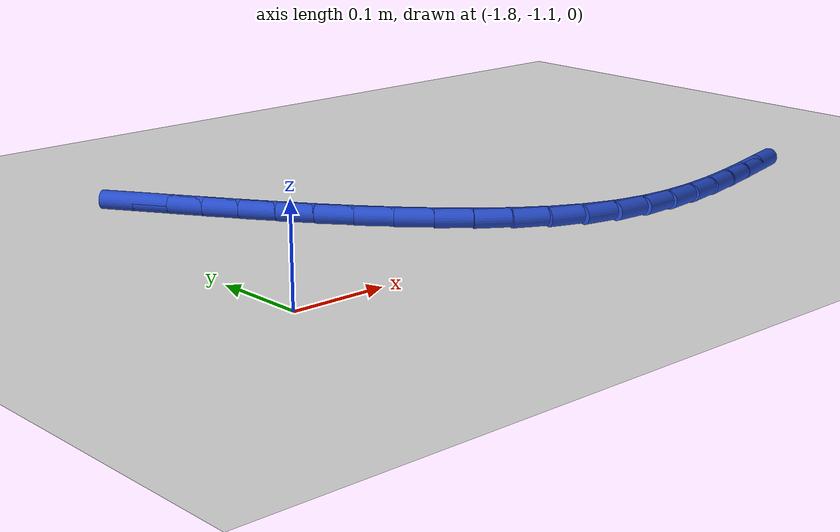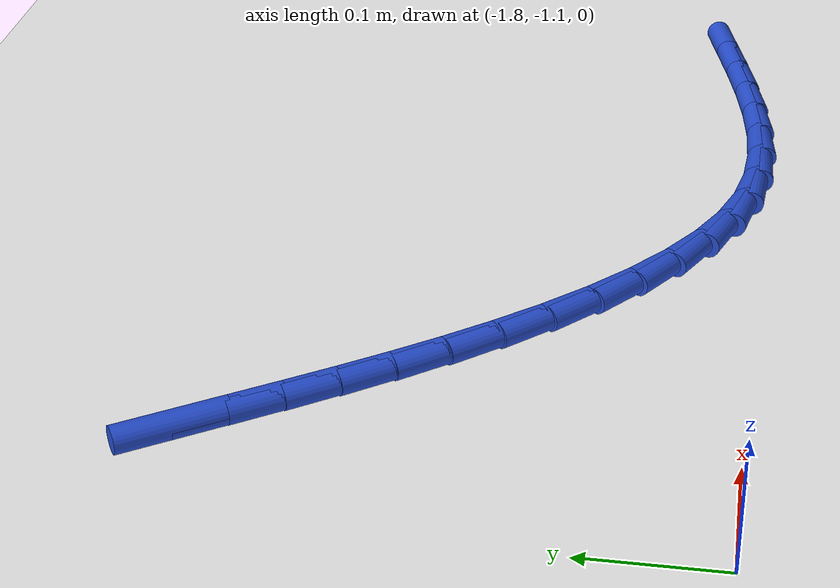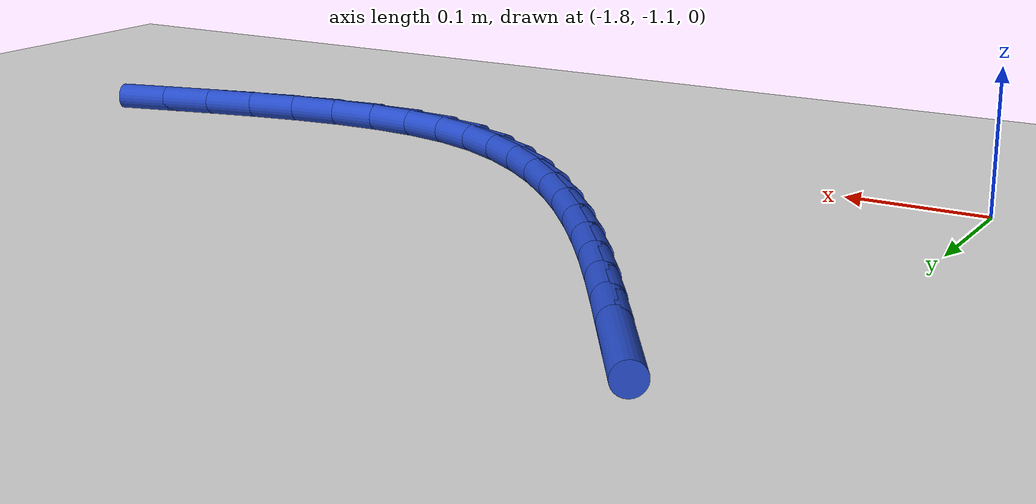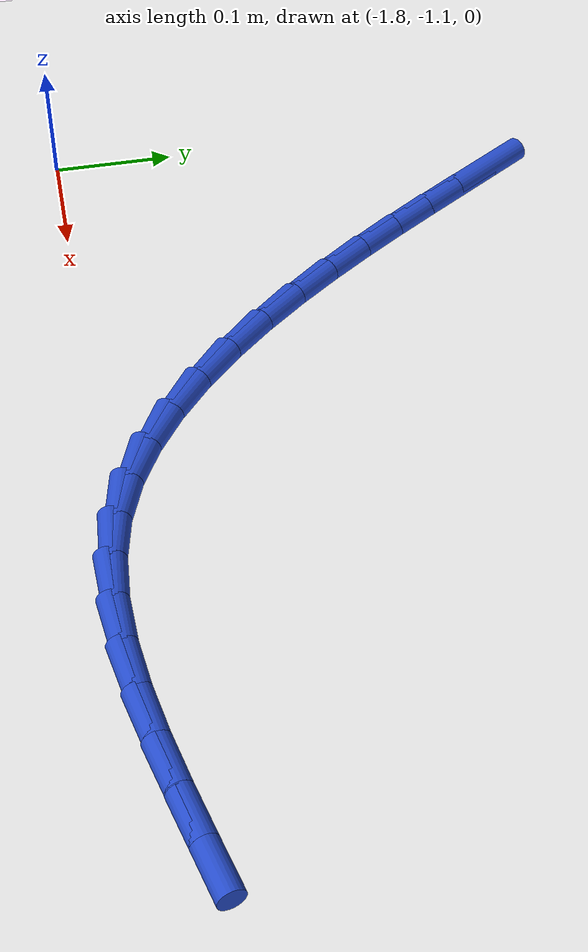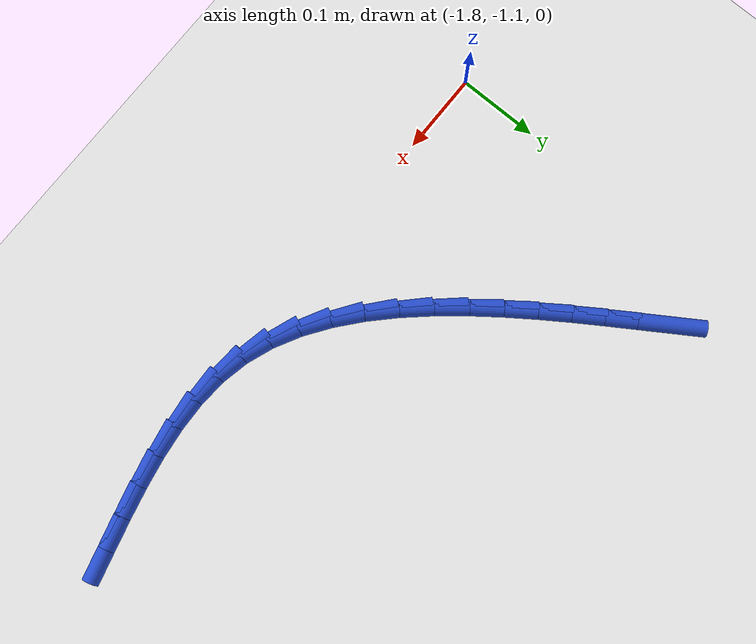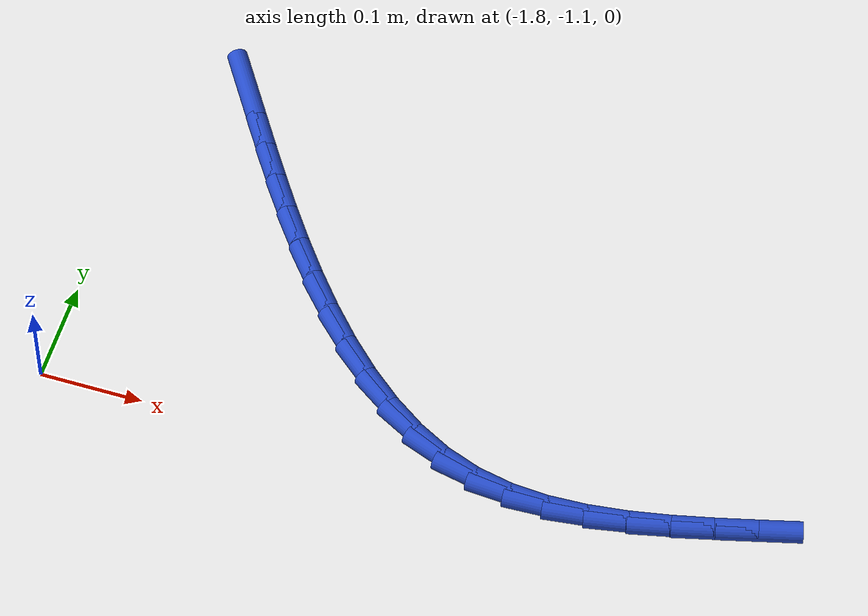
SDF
<sdf version="1.6">
 <world name="default">
  <model name="ground_plane">
   <static>1</static>
   <link name="link">
    <collision name="collision">
     <geometry><plane><normal>0 0 1</normal><size>100 100</size></plane></geometry>
     <surface><friction><ode><mu>100</mu><mu2>50</mu2></ode></friction></surface>
    </collision>
    <visual name="visual">
     <cast_shadows>0</cast_shadows>
     <geometry><plane><normal>0 0 1</normal><size>100 100</size></plane></geometry>
     <material>
      <script><uri>file://media/materials/scripts/gazebo.material</uri><name>Gazebo/WhiteGlow</name></script>
     </material>
    </visual>
   </link>
  </model>
  <model name="line">
   <link name="link_106">
    <pose>-1.7204798041737317 -0.7313379436964005 0.01 0 1.57 -1.0007132624185011</pose>
    <collision name="collision">
     <geometry><cylinder><radius>0.01</radius><length>0.08</length></cylinder></geometry>
    </collision>
    <visual name="visual">
     <material>
      <script><name>Gazebo/Blue</name><uri>file://media/materials/scripts/gazebo.material</uri></script>
     </material>
     <geometry><cylinder><radius>0.01</radius><length>0.08</length></cylinder></geometry>
    </visual>
   </link>
   <link name="link_107">
    <pose>-1.6999157924754942 -0.763414794171799 0.01 0 1.57 -1.0006744654549193</pose>
    <collision name="collision">
     <geometry><cylinder><radius>0.01</radius><length>0.08</length></cylinder></geometry>
    </collision>
    <visual name="visual">
     <material>
      <script><name>Gazebo/Blue</name><uri>file://media/materials/scripts/gazebo.material</uri></script>
     </material>
     <geometry><cylinder><radius>0.01</radius><length>0.08</length></cylinder></geometry>
    </visual>
   </link>
   <link name="link_108">
    <pose>-1.6791866040426928 -0.7957465353251337 0.01 0 1.57 -0.9926985561846143</pose>
    <collision name="collision">
     <geometry><cylinder><radius>0.01</radius><length>0.08</length></cylinder></geometry>
    </collision>
    <visual name="visual">
     <material>
      <script><name>Gazebo/Blue</name><uri>file://media/materials/scripts/gazebo.material</uri></script>
     </material>
     <geometry><cylinder><radius>0.01</radius><length>0.08</length></cylinder></geometry>
    </visual>
   </link>
   <link name="link_109">
    <pose>-1.6579778067019624 -0.8282527769335757 0.01 0 1.57 -0.9770972176353658</pose>
    <collision name="collision">
     <geometry><cylinder><radius>0.01</radius><length>0.08</length></cylinder></geometry>
    </collision>
    <visual name="visual">
     <material>
      <script><name>Gazebo/Blue</name><uri>file://media/materials/scripts/gazebo.material</uri></script>
     </material>
     <geometry><cylinder><radius>0.01</radius><length>0.08</length></cylinder></geometry>
    </visual>
   </link>
   <link name="link_110">
    <pose>-1.6359749682799376 -0.8608531287742962 0.01 0 1.57 -0.9543017349376272</pose>
    <collision name="collision">
     <geometry><cylinder><radius>0.01</radius><length>0.08</length></cylinder></geometry>
    </collision>
    <visual name="visual">
     <material>
      <script><name>Gazebo/Blue</name><uri>file://media/materials/scripts/gazebo.material</uri></script>
     </material>
     <geometry><cylinder><radius>0.01</radius><length>0.08</length></cylinder></geometry>
    </visual>
   </link>
   <link name="link_111">
    <pose>-1.6128636719430214 -0.8934671725242409 0.01 0 1.57 -0.9243742410533745</pose>
    <collision name="collision">
     <geometry><cylinder><radius>0.01</radius><length>0.08</length></cylinder></geometry>
    </collision>
    <visual name="visual">
     <material>
      <script><name>Gazebo/Blue</name><uri>file://media/materials/scripts/gazebo.material</uri></script>
     </material>
     <geometry><cylinder><radius>0.01</radius><length>0.08</length></cylinder></geometry>
    </visual>
   </link>
   <link name="link_112">
    <pose>-1.5883953974635836 -0.9258937768503374 0.01 0 1.57 -0.8856551170062893</pose>
    <collision name="collision">
     <geometry><cylinder><radius>0.01</radius><length>0.08</length></cylinder></geometry>
    </collision>
    <visual name="visual">
     <material>
      <script><name>Gazebo/Blue</name><uri>file://media/materials/scripts/gazebo.material</uri></script>
     </material>
     <geometry><cylinder><radius>0.01</radius><length>0.08</length></cylinder></geometry>
    </visual>
   </link>
   <link name="link_113">
    <pose>-1.5625383556009234 -0.9575347907337242 0.01 0 1.57 -0.8366113300094473</pose>
    <collision name="collision">
     <geometry><cylinder><radius>0.01</radius><length>0.08</length></cylinder></geometry>
    </collision>
    <visual name="visual">
     <material>
      <script><name>Gazebo/Blue</name><uri>file://media/materials/scripts/gazebo.material</uri></script>
     </material>
     <geometry><cylinder><radius>0.01</radius><length>0.08</length></cylinder></geometry>
    </visual>
   </link>
   <link name="link_114">
    <pose>-1.5353052485463485 -0.9877105613149035 0.01 0 1.57 -0.7754104651573622</pose>
    <collision name="collision">
     <geometry><cylinder><radius>0.01</radius><length>0.08</length></cylinder></geometry>
    </collision>
    <visual name="visual">
     <material>
      <script><name>Gazebo/Blue</name><uri>file://media/materials/scripts/gazebo.material</uri></script>
     </material>
     <geometry><cylinder><radius>0.01</radius><length>0.08</length></cylinder></geometry>
    </visual>
   </link>
   <link name="link_115">
    <pose>-1.506708778491168 -1.015741435734378 0.01 0 1.57 -0.6996522937081583</pose>
    <collision name="collision">
     <geometry><cylinder><radius>0.01</radius><length>0.08</length></cylinder></geometry>
    </collision>
    <visual name="visual">
     <material>
      <script><name>Gazebo/Blue</name><uri>file://media/materials/scripts/gazebo.material</uri></script>
     </material>
     <geometry><cylinder><radius>0.01</radius><length>0.08</length></cylinder></geometry>
    </visual>
   </link>
   <link name="link_116">
    <pose>-1.4767616476266927 -1.0409477611326488 0.01 0 1.57 -0.6064778473874002</pose>
    <collision name="collision">
     <geometry><cylinder><radius>0.01</radius><length>0.08</length></cylinder></geometry>
    </collision>
    <visual name="visual">
     <material>
      <script><name>Gazebo/Blue</name><uri>file://media/materials/scripts/gazebo.material</uri></script>
     </material>
     <geometry><cylinder><radius>0.01</radius><length>0.08</length></cylinder></geometry>
    </visual>
   </link>
   <link name="link_117">
    <pose>-1.445476558144231 -1.0626498846502188 0.01 0 1.57 -0.49296265704949804</pose>
    <collision name="collision">
     <geometry><cylinder><radius>0.01</radius><length>0.08</length></cylinder></geometry>
    </collision>
    <visual name="visual">
     <material>
      <script><name>Gazebo/Blue</name><uri>file://media/materials/scripts/gazebo.material</uri></script>
     </material>
     <geometry><cylinder><radius>0.01</radius><length>0.08</length></cylinder></geometry>
    </visual>
   </link>
   <link name="link_118">
    <pose>-1.4128662122350928 -1.08016815342759 0.01 0 1.57 -0.35705553343267</pose>
    <collision name="collision">
     <geometry><cylinder><radius>0.01</radius><length>0.08</length></cylinder></geometry>
    </collision>
    <visual name="visual">
     <material>
      <script><name>Gazebo/Blue</name><uri>file://media/materials/scripts/gazebo.material</uri></script>
     </material>
     <geometry><cylinder><radius>0.01</radius><length>0.08</length></cylinder></geometry>
    </visual>
   </link>
   <link name="link_119">
    <pose>-1.3789433125836714 -1.0928229190714756 0.01 0 1.57 -0.20638548125433986</pose>
    <collision name="collision">
     <geometry><cylinder><radius>0.01</radius><length>0.08</length></cylinder></geometry>
    </collision>
    <visual name="visual">
     <material>
      <script><name>Gazebo/Blue</name><uri>file://media/materials/scripts/gazebo.material</uri></script>
     </material>
     <geometry><cylinder><radius>0.01</radius><length>0.08</length></cylinder></geometry>
    </visual>
   </link>
   <link name="link_120">
    <pose>-1.34374892620274 -1.1001914484959154 0.01 0 1.57 -0.07169623516142502</pose>
    <collision name="collision">
     <geometry><cylinder><radius>0.01</radius><length>0.08</length></cylinder></geometry>
    </collision>
    <visual name="visual">
     <material>
      <script><name>Gazebo/Blue</name><uri>file://media/materials/scripts/gazebo.material</uri></script>
     </material>
     <geometry><cylinder><radius>0.01</radius><length>0.08</length></cylinder></geometry>
    </visual>
   </link>
   <link name="link_121">
    <pose>-1.30742888424844 -1.1027999297997564 0.01 0 1.57 0.03771036814938281</pose>
    <collision name="collision">
     <geometry><cylinder><radius>0.01</radius><length>0.08</length></cylinder></geometry>
    </collision>
    <visual name="visual">
     <material>
      <script><name>Gazebo/Blue</name><uri>file://media/materials/scripts/gazebo.material</uri></script>
     </material>
     <geometry><cylinder><radius>0.01</radius><length>0.08</length></cylinder></geometry>
    </visual>
   </link>
   <link name="link_122">
    <pose>-1.2701531997838718 -1.1013935833104425 0.01 0 1.57 0.12224066013168666</pose>
    <collision name="collision">
     <geometry><cylinder><radius>0.01</radius><length>0.08</length></cylinder></geometry>
    </collision>
    <visual name="visual">
     <material>
      <script><name>Gazebo/Blue</name><uri>file://media/materials/scripts/gazebo.material</uri></script>
     </material>
     <geometry><cylinder><radius>0.01</radius><length>0.08</length></cylinder></geometry>
    </visual>
   </link>
   <link name="link_123">
    <pose>-1.232091885872133 -1.0967176293554175 0.01 0 1.57 0.1840592369763479</pose>
    <collision name="collision">
     <geometry><cylinder><radius>0.01</radius><length>0.08</length></cylinder></geometry>
    </collision>
    <visual name="visual">
     <material>
      <script><name>Gazebo/Blue</name><uri>file://media/materials/scripts/gazebo.material</uri></script>
     </material>
     <geometry><cylinder><radius>0.01</radius><length>0.08</length></cylinder></geometry>
    </visual>
   </link>
   <link name="link_124">
    <pose>-1.1934149555763225 -1.0895172882621256 0.01 0 1.57 0.22561498147060421</pose>
    <collision name="collision">
     <geometry><cylinder><radius>0.01</radius><length>0.08</length></cylinder></geometry>
    </collision>
    <visual name="visual">
     <material>
      <script><name>Gazebo/Blue</name><uri>file://media/materials/scripts/gazebo.material</uri></script>
     </material>
     <geometry><cylinder><radius>0.01</radius><length>0.08</length></cylinder></geometry>
    </visual>
   </link>
   <link name="link_125">
    <pose>-1.154292421959539 -1.0805377803580098 0.01 0 1.57 0.24889075771983818</pose>
    <collision name="collision">
     <geometry><cylinder><radius>0.01</radius><length>0.08</length></cylinder></geometry>
    </collision>
    <visual name="visual">
     <material>
      <script><name>Gazebo/Blue</name><uri>file://media/materials/scripts/gazebo.material</uri></script>
     </material>
     <geometry><cylinder><radius>0.01</radius><length>0.08</length></cylinder></geometry>
    </visual>
   </link>
   <link name="link_126">
    <pose>-1.11489429808488 -1.0705243259705148 0.01 0 1.57 0.25510813871374255</pose>
    <collision name="collision">
     <geometry><cylinder><radius>0.01</radius><length>0.08</length></cylinder></geometry>
    </collision>
    <visual name="visual">
     <material>
      <script><name>Gazebo/Blue</name><uri>file://media/materials/scripts/gazebo.material</uri></script>
     </material>
     <geometry><cylinder><radius>0.01</radius><length>0.08</length></cylinder></geometry>
    </visual>
   </link>
  </model>
 </world>
</sdf>
